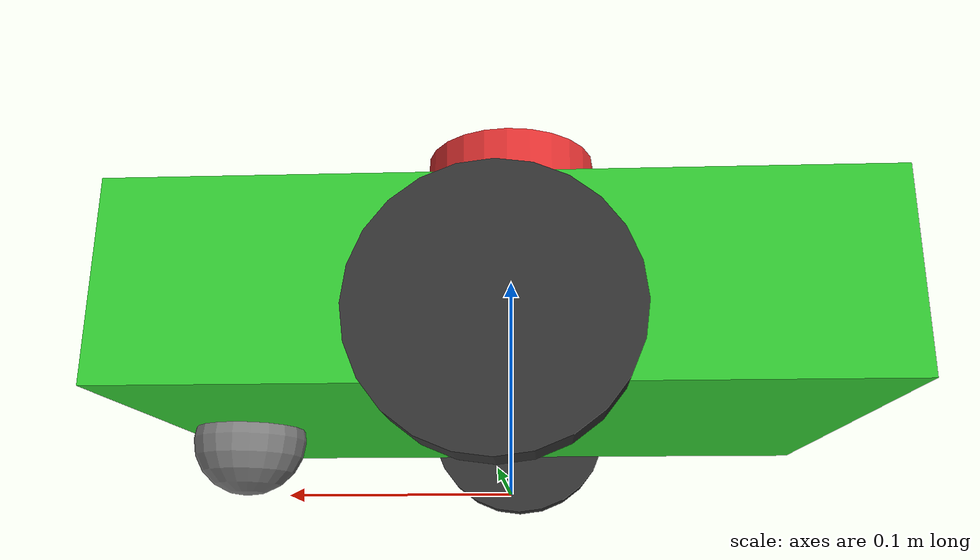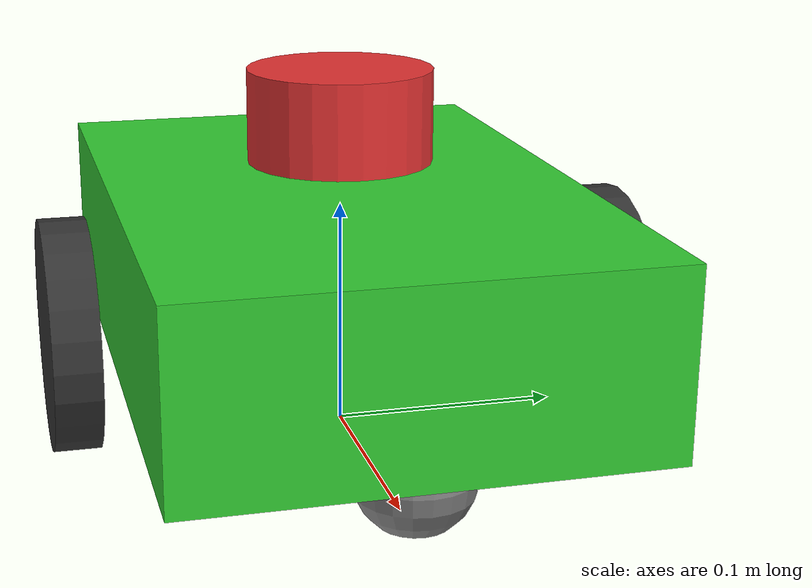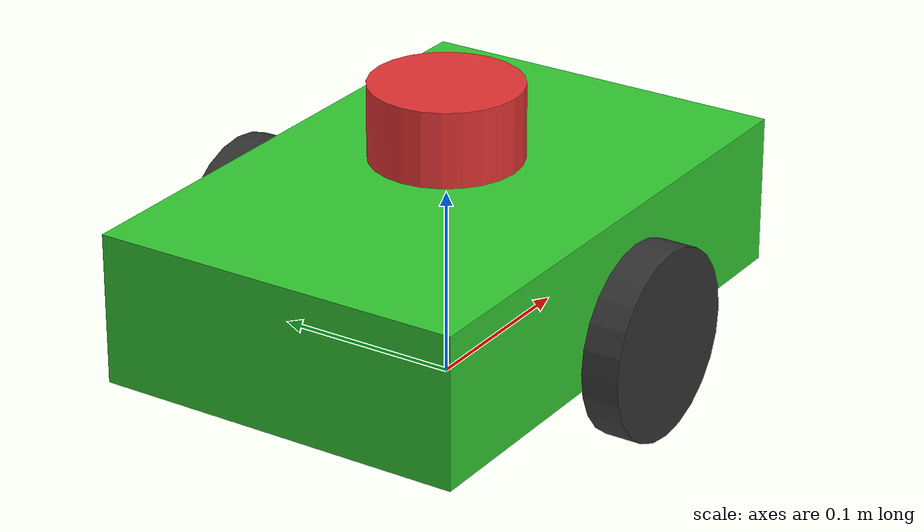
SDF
<?xml version="1.0" ?>
<sdf version="1.6">
  <model name="simple_robot">

    <!-- ── Base body ───────────────────────────────────────────────────── -->
    <link name="base_link">
      <pose>0 0 0.07 0 0 0</pose>
      <inertial>
        <mass>2.0</mass>
        <inertia>
          <ixx>0.0166</ixx><ixy>0</ixy><ixz>0</ixz>
          <iyy>0.0230</iyy><iyz>0</iyz>
          <izz>0.0380</izz>
        </inertia>
      </inertial>
      <collision name="base_collision">
        <geometry><box><size>0.30 0.20 0.08</size></box></geometry>
      </collision>
      <visual name="base_visual">
        <geometry><box><size>0.30 0.20 0.08</size></box></geometry>
        <material>
          <ambient>0.2 0.7 0.2 1</ambient>
          <diffuse>0.2 0.8 0.2 1</diffuse>
          <specular>0.1 0.1 0.1 1</specular>
        </material>
      </visual>
    </link>

    <!-- ── Left wheel ──────────────────────────────────────────────────── -->
    <link name="left_wheel">
      <pose>0.0 0.12 0.05 -1.5707963 0 0</pose>
      <inertial>
        <mass>0.3</mass>
        <inertia>
          <ixx>0.000195</ixx><ixy>0</ixy><ixz>0</ixz>
          <iyy>0.000195</iyy><iyz>0</iyz>
          <izz>0.000375</izz>
        </inertia>
      </inertial>
      <collision name="left_wheel_col">
        <geometry><cylinder><radius>0.05</radius><length>0.02</length></cylinder></geometry>
        <surface>
          <friction><ode><mu>1.0</mu><mu2>1.0</mu2></ode></friction>
        </surface>
      </collision>
      <visual name="left_wheel_vis">
        <geometry><cylinder><radius>0.05</radius><length>0.02</length></cylinder></geometry>
        <material>
          <ambient>0.1 0.1 0.1 1</ambient>
          <diffuse>0.2 0.2 0.2 1</diffuse>
        </material>
      </visual>
    </link>

    <joint name="left_wheel_joint" type="revolute">
      <parent>base_link</parent>
      <child>left_wheel</child>
      <axis>
        <xyz>0 0 1</xyz>
        <limit><effort>10</effort><velocity>10</velocity></limit>
        <dynamics><damping>0.01</damping></dynamics>
      </axis>
    </joint>

    <!-- ── Right wheel ─────────────────────────────────────────────────── -->
    <link name="right_wheel">
      <pose>0.0 -0.12 0.05 -1.5707963 0 0</pose>
      <inertial>
        <mass>0.3</mass>
        <inertia>
          <ixx>0.000195</ixx><ixy>0</ixy><ixz>0</ixz>
          <iyy>0.000195</iyy><iyz>0</iyz>
          <izz>0.000375</izz>
        </inertia>
      </inertial>
      <collision name="right_wheel_col">
        <geometry><cylinder><radius>0.05</radius><length>0.02</length></cylinder></geometry>
        <surface>
          <friction><ode><mu>1.0</mu><mu2>1.0</mu2></ode></friction>
        </surface>
      </collision>
      <visual name="right_wheel_vis">
        <geometry><cylinder><radius>0.05</radius><length>0.02</length></cylinder></geometry>
        <material>
          <ambient>0.1 0.1 0.1 1</ambient>
          <diffuse>0.2 0.2 0.2 1</diffuse>
        </material>
      </visual>
    </link>

    <joint name="right_wheel_joint" type="revolute">
      <parent>base_link</parent>
      <child>right_wheel</child>
      <axis>
        <xyz>0 0 1</xyz>
        <limit><effort>10</effort><velocity>10</velocity></limit>
        <dynamics><damping>0.01</damping></dynamics>
      </axis>
    </joint>

    <!-- ── Caster (passive front wheel) ────────────────────────────────── -->
    <link name="caster_link">
      <pose>0.12 0 0.025 0 0 0</pose>
      <inertial>
        <mass>0.1</mass>
        <inertia>
          <ixx>0.00004</ixx><ixy>0</ixy><ixz>0</ixz>
          <iyy>0.00004</iyy><iyz>0</iyz>
          <izz>0.00004</izz>
        </inertia>
      </inertial>
      <collision name="caster_col">
        <geometry><sphere><radius>0.025</radius></sphere></geometry>
        <surface>
          <friction><ode><mu>0.0</mu><mu2>0.0</mu2></ode></friction>
        </surface>
      </collision>
      <visual name="caster_vis">
        <geometry><sphere><radius>0.025</radius></sphere></geometry>
        <material><ambient>0.5 0.5 0.5 1</ambient></material>
      </visual>
    </link>

    <joint name="caster_joint" type="ball">
      <parent>base_link</parent>
      <child>caster_link</child>
    </joint>

    <!-- ── Lidar sensor ─────────────────────────────────────────────────── -->
    <link name="lidar_link">
      <pose>0.0 0 0.14 0 0 0</pose>
      <inertial>
        <mass>0.1</mass>
        <inertia>
          <ixx>0.000004</ixx><ixy>0</ixy><ixz>0</ixz>
          <iyy>0.000004</iyy><iyz>0</iyz>
          <izz>0.000004</izz>
        </inertia>
      </inertial>
      <visual name="lidar_vis">
        <geometry><cylinder><radius>0.04</radius><length>0.04</length></cylinder></geometry>
        <material>
          <ambient>0.8 0.2 0.2 1</ambient>
          <diffuse>0.9 0.2 0.2 1</diffuse>
        </material>
      </visual>
      <collision name="lidar_col">
        <geometry><cylinder><radius>0.04</radius><length>0.04</length></cylinder></geometry>
      </collision>

      <sensor name="lidar" type="ray">
        <always_on>true</always_on>
        <update_rate>10</update_rate>
        <visualize>true</visualize>
        <ray>
          <scan>
            <horizontal>
              <samples>360</samples>
              <resolution>1</resolution>
              <min_angle>-3.14159265</min_angle>
              <max_angle>3.14159265</max_angle>
            </horizontal>
          </scan>
          <range>
            <min>0.10</min>
            <max>5.0</max>
            <resolution>0.01</resolution>
          </range>
          <noise>
            <type>gaussian</type>
            <mean>0.0</mean>
            <stddev>0.01</stddev>
          </noise>
        </ray>

        <!-- Publish as sensor_msgs/LaserScan on /scan -->
        <plugin name="lidar_plugin" filename="libgazebo_ros_ray_sensor.so">
          <ros>
            <remapping>~/out:=scan</remapping>
          </ros>
          <output_type>sensor_msgs/LaserScan</output_type>
          <frame_name>lidar_link</frame_name>
        </plugin>
      </sensor>
    </link>

    <joint name="lidar_joint" type="fixed">
      <parent>base_link</parent>
      <child>lidar_link</child>
    </joint>

    <!-- ── Differential drive plugin ───────────────────────────────────── -->
    <plugin name="diff_drive" filename="libgazebo_ros_diff_drive.so">
      <update_rate>30</update_rate>
      <left_joint>left_wheel_joint</left_joint>
      <right_joint>right_wheel_joint</right_joint>
      <wheel_separation>0.24</wheel_separation>
      <wheel_diameter>0.10</wheel_diameter>
      <max_wheel_torque>20</max_wheel_torque>
      <max_wheel_acceleration>1.0</max_wheel_acceleration>
      <ros>
        <remapping>cmd_vel:=cmd_vel</remapping>
        <remapping>odom:=odom</remapping>
      </ros>
      <publish_odom>true</publish_odom>
      <publish_odom_tf>true</publish_odom_tf>
      <publish_wheel_tf>true</publish_wheel_tf>
      <odometry_frame>odom</odometry_frame>
      <robot_base_frame>base_link</robot_base_frame>
    </plugin>

  </model>
</sdf>
